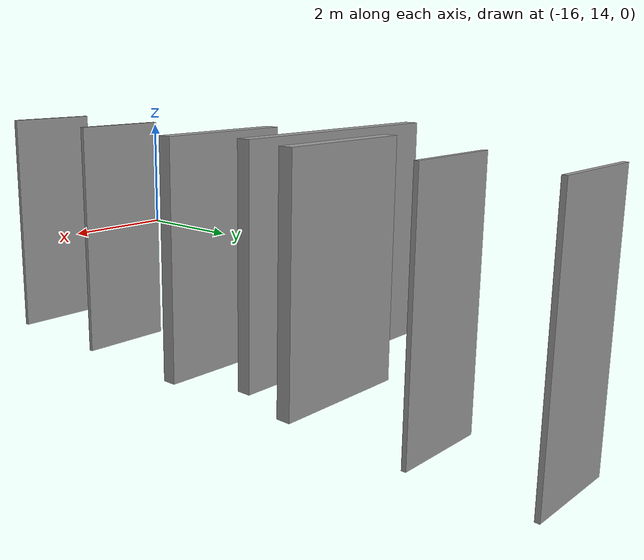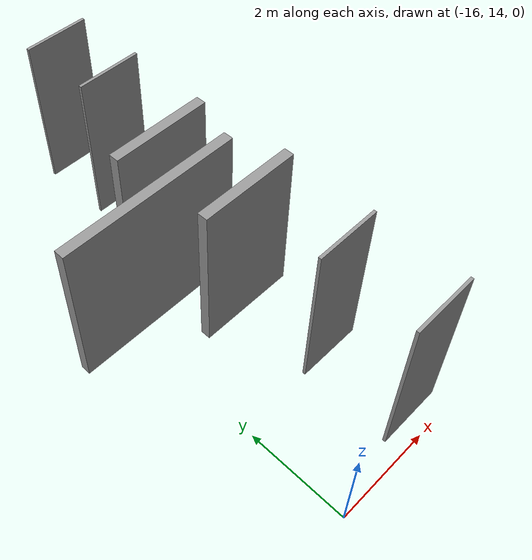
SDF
<sdf version="1.7">
 <world name="default">
  <model name="unit_box">
   <pose>-14.7991 19.7084 0.5 0 -0 0</pose>
   <link name="link">
    <inertial>
     <mass>1</mass>
     <inertia>
      <ixx>0.166667</ixx>
      <ixy>0</ixy>
      <ixz>0</ixz>
      <iyy>0.166667</iyy>
      <iyz>0</iyz>
      <izz>0.166667</izz>
     </inertia>
    </inertial>
    <collision name="collision"><geometry><box><size>3.95948 0.222201 3.63928</size></box></geometry></collision>
    <visual name="visual">
     <geometry><box><size>3.95948 0.222201 3.63928</size></box></geometry>
     <material>
      <script><name>Gazebo/Grey</name><uri>file://media/materials/scripts/gazebo.material</uri></script>
     </material>
    </visual>
   </link>
  </model>
  <model name="unit_box_clone">
   <pose>-13.5953 20.7689 0.5 0 -0 0</pose>
   <link name="link">
    <inertial>
     <mass>1</mass>
     <inertia>
      <ixx>0.166667</ixx>
      <ixy>0</ixy>
      <ixz>0</ixz>
      <iyy>0.166667</iyy>
      <iyz>0</iyz>
      <izz>0.166667</izz>
     </inertia>
    </inertial>
    <collision name="collision"><geometry><box><size>2.20731 0.222201 3.63928</size></box></geometry></collision>
    <visual name="visual">
     <geometry><box><size>2.20731 0.222201 3.63928</size></box></geometry>
     <material>
      <script><name>Gazebo/Grey</name><uri>file://media/materials/scripts/gazebo.material</uri></script>
     </material>
    </visual>
   </link>
  </model>
  <model name="unit_box_clone_clone">
   <pose>-13.4476 18.6312 0.5 0 -0 0</pose>
   <link name="link">
    <inertial>
     <mass>1</mass>
     <inertia>
      <ixx>0.166667</ixx>
      <ixy>0</ixy>
      <ixz>0</ixz>
      <iyy>0.166667</iyy>
      <iyz>0</iyz>
      <izz>0.166667</izz>
     </inertia>
    </inertial>
    <collision name="collision"><geometry><box><size>2.20731 0.222201 3.63928</size></box></geometry></collision>
    <visual name="visual">
     <geometry><box><size>2.20731 0.222201 3.63928</size></box></geometry>
     <material>
      <script><name>Gazebo/Grey</name><uri>file://media/materials/scripts/gazebo.material</uri></script>
     </material>
    </visual>
   </link>
  </model>
  <model name="unit_box_clone_clone_0">
   <pose>-13.1785 24.3672 0.5 0 -0 0</pose>
   <link name="link">
    <inertial>
     <mass>1</mass>
     <inertia>
      <ixx>0.166667</ixx>
      <ixy>0</ixy>
      <ixz>0</ixz>
      <iyy>0.166667</iyy>
      <iyz>0</iyz>
      <izz>0.166667</izz>
     </inertia>
    </inertial>
    <collision name="collision"><geometry><box><size>1.45302 0.0658092 3.63928</size></box></geometry></collision>
    <visual name="visual">
     <geometry><box><size>1.45302 0.0658092 3.63928</size></box></geometry>
     <material>
      <script><name>Gazebo/Grey</name><uri>file://media/materials/scripts/gazebo.material</uri></script>
     </material>
    </visual>
   </link>
  </model>
  <model name="unit_box_clone_clone_0_clone">
   <pose>-13.1579 22.7201 0.5 0 -0 0</pose>
   <link name="link">
    <inertial>
     <mass>1</mass>
     <inertia>
      <ixx>0.166667</ixx>
      <ixy>0</ixy>
      <ixz>0</ixz>
      <iyy>0.166667</iyy>
      <iyz>0</iyz>
      <izz>0.166667</izz>
     </inertia>
    </inertial>
    <collision name="collision"><geometry><box><size>1.45302 0.065809 3.63928</size></box></geometry></collision>
    <visual name="visual">
     <geometry><box><size>1.45302 0.065809 3.63928</size></box></geometry>
     <material>
      <script><name>Gazebo/Grey</name><uri>file://media/materials/scripts/gazebo.material</uri></script>
     </material>
    </visual>
   </link>
  </model>
  <model name="unit_box_clone_clone_0_clone_clone">
   <pose>-13.1002 16.6289 0.5 0 -0 0</pose>
   <link name="link">
    <inertial>
     <mass>1</mass>
     <inertia>
      <ixx>0.166667</ixx>
      <ixy>0</ixy>
      <ixz>0</ixz>
      <iyy>0.166667</iyy>
      <iyz>0</iyz>
      <izz>0.166667</izz>
     </inertia>
    </inertial>
    <collision name="collision"><geometry><box><size>1.45302 0.065809 3.63928</size></box></geometry></collision>
    <visual name="visual">
     <geometry><box><size>1.45302 0.065809 3.63928</size></box></geometry>
     <material>
      <script><name>Gazebo/Grey</name><uri>file://media/materials/scripts/gazebo.material</uri></script>
     </material>
    </visual>
   </link>
  </model>
  <model name="unit_box_clone_clone_0_clone_clone_0">
   <pose>-13.1322 14.6389 0.5 0 -0 0</pose>
   <link name="link">
    <inertial>
     <mass>1</mass>
     <inertia>
      <ixx>0.166667</ixx>
      <ixy>0</ixy>
      <ixz>0</ixz>
      <iyy>0.166667</iyy>
      <iyz>0</iyz>
      <izz>0.166667</izz>
     </inertia>
    </inertial>
    <collision name="collision"><geometry><box><size>1.45302 0.065809 3.63928</size></box></geometry></collision>
    <visual name="visual">
     <geometry><box><size>1.45302 0.065809 3.63928</size></box></geometry>
     <material>
      <script><name>Gazebo/Grey</name><uri>file://media/materials/scripts/gazebo.material</uri></script>
     </material>
    </visual>
   </link>
  </model>
 </world>
</sdf>
